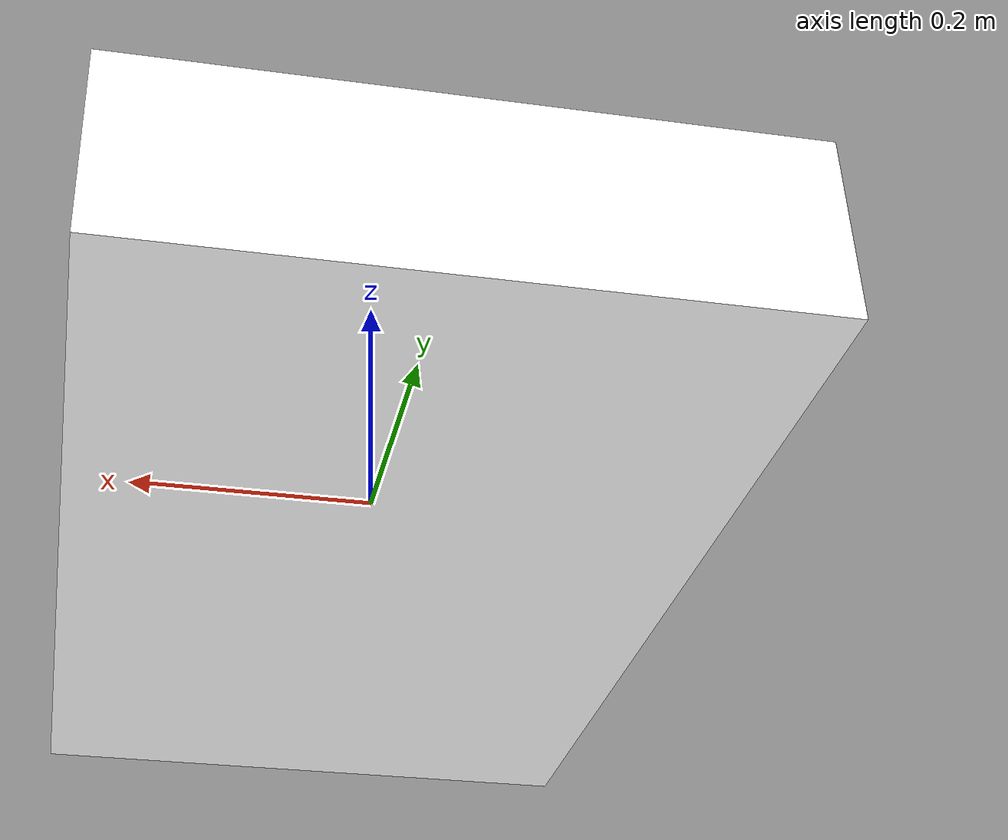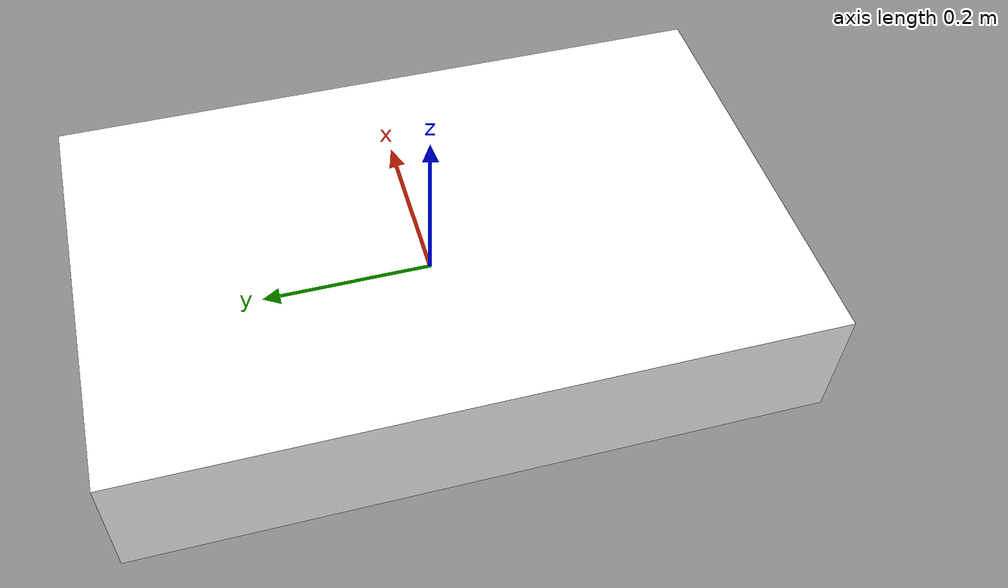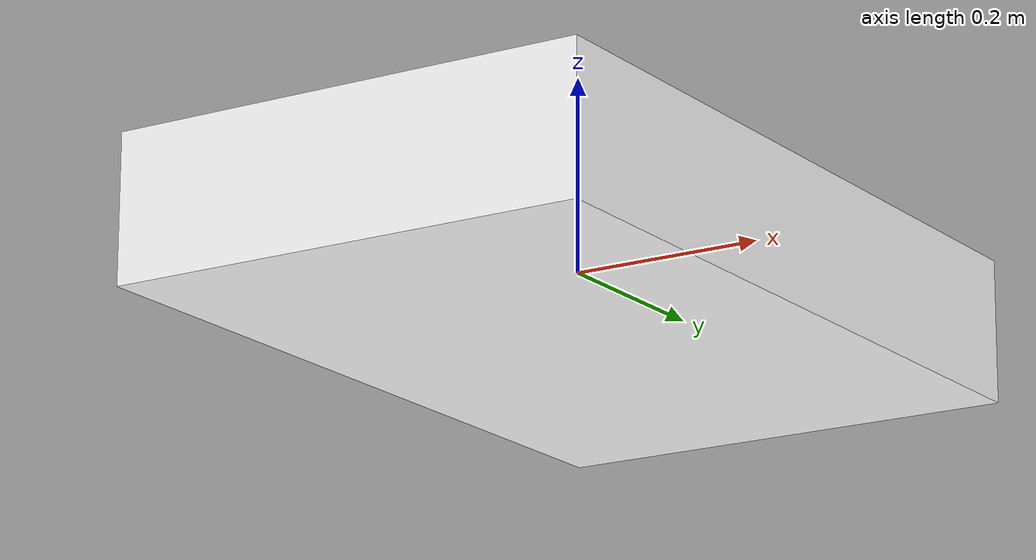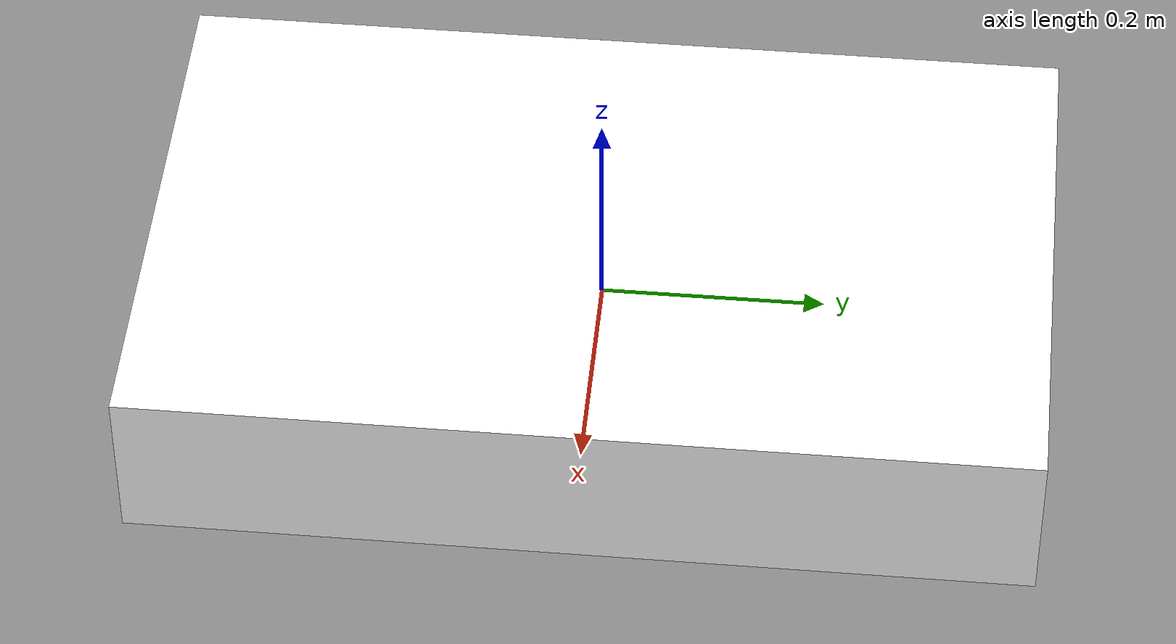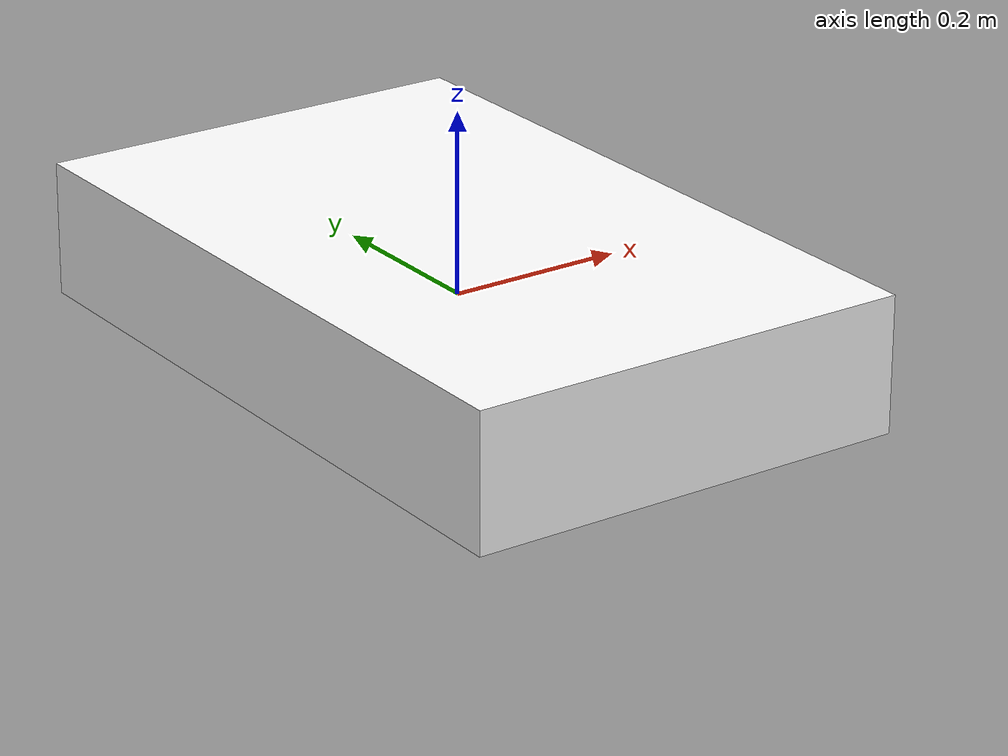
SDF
<?xml version="1.0" ?>
<sdf version="1.6">
  <model name="table_15cm">
    <static>true</static>
    <link name="link">
      <collision name="collision">
        <geometry>
          <box>
            <size>0.5 0.8 0.15</size>
          </box>
        </geometry>
      </collision>
      <visual name="visual">
        <geometry>
          <box>
            <size>0.5 0.8 0.15</size>
          </box>
        </geometry>
        <material>
          <ambient>1 1 1 1</ambient>
          <diffuse>1 1 1 1</diffuse>
        </material>
      </visual>
    </link>
  </model>
</sdf>
